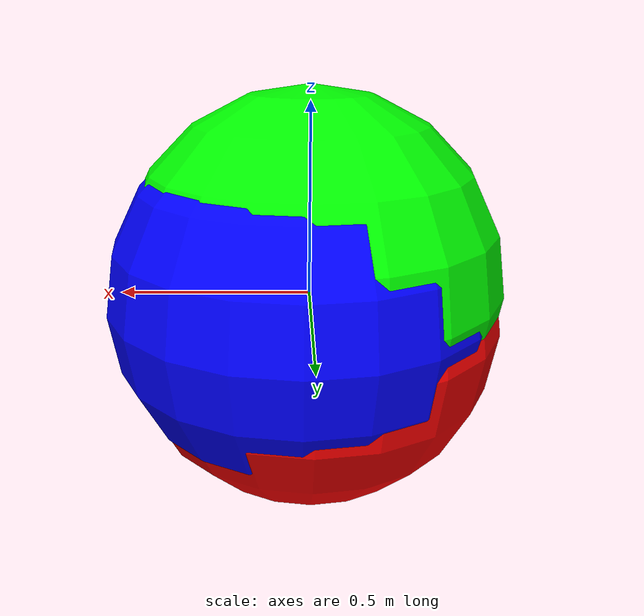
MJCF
<mujoco model="hook">
  <asset>
    <mesh file="meshes/hook.stl" name="hook_mesh" scale="0.002 0.002 0.002"/>
    <texture type="skybox" file="../textures/metal.png" name="steel-metal"/>
    <material name="metal" reflectance="1.0" shininess="1.0" specular="1.0" texrepeat="1 1" texture="steel-metal" texuniform="true"/>
  </asset>
  <worldbody>
    <body>
      <body name="object">
        <geom pos="0 0 0" mesh="hook_mesh" type="mesh" solimp="0.998 0.998 0.001" solref="0.001 1" density="100" friction="0.99 0.3 0.1" material="metal" group="0"/>
      </body>
      <site type="sphere" rgba="1 0 0 1" size="0.5" pos="0 0 -0.06" name="bottom_site"/>
      <site type="sphere" rgba="0 1 0 1" size="0.5" pos="0 0 0.04" name="top_site"/>
      <site type="sphere" rgba="0 0 1 1" size="0.5" pos="0.025 0.025 0" name="horizontal_radius_site"/>
    </body>
  </worldbody>
</mujoco>
